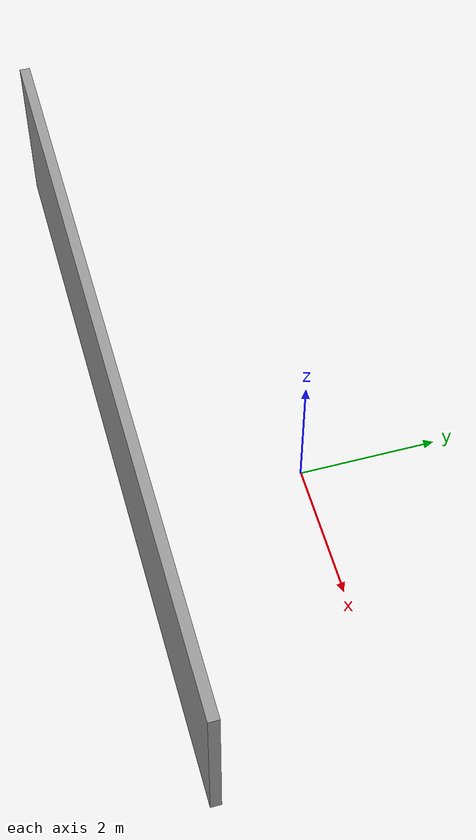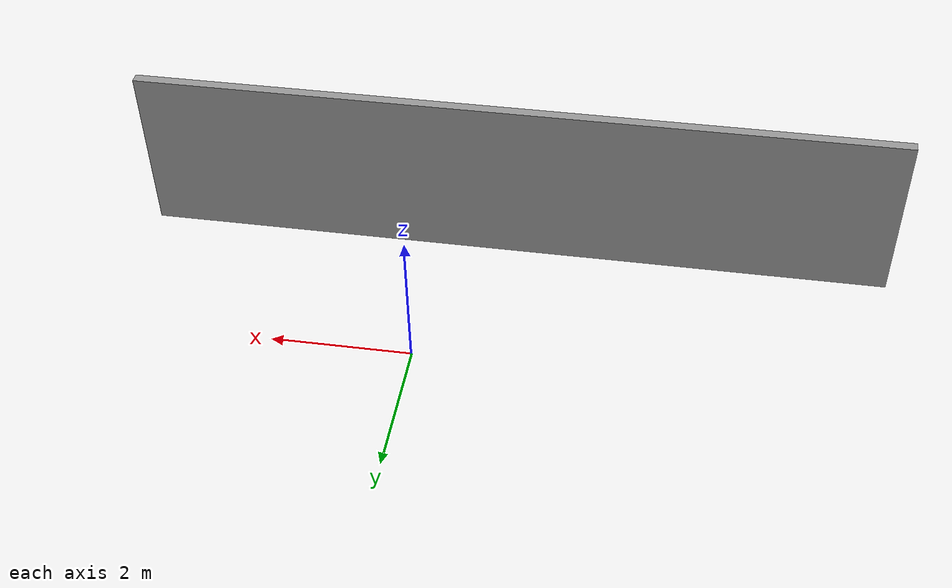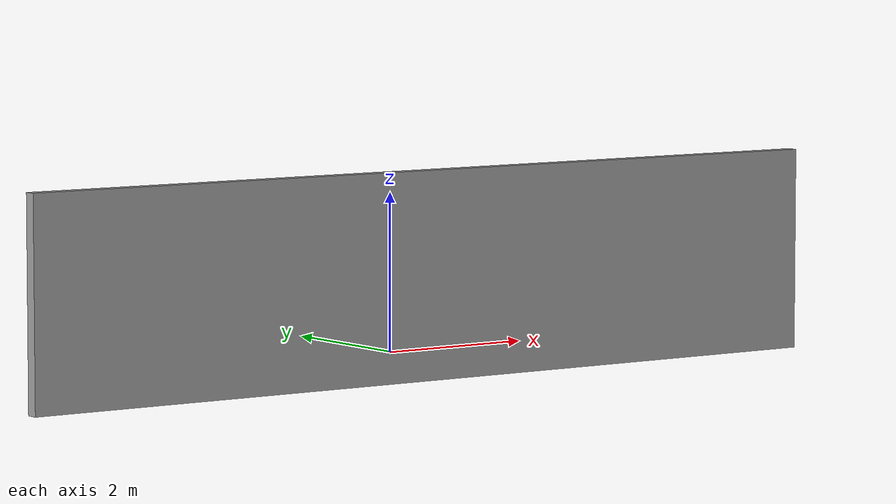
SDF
<?xml version='1.0'?>
<sdf version='1.6'>
  <model name='wall'>
    <pose frame=''>-1.0585 -2.453 0 0 -0 0</pose>
    <link name='Wall_2'>
      <collision name='Wall_2_Collision'>
        <geometry>
          <box>
            <size>11 0.15 2.5</size>
          </box>
        </geometry>
        <pose frame=''>0 0 1.25 0 -0 0</pose>
      </collision>
      <visual name='Wall_2_Visual'>
        <pose frame=''>0 0 1.25 0 -0 0</pose>
        <geometry>
          <box>
            <size>11 0.15 2.5</size>
          </box>
        </geometry>
        <material>
          <script>
            <uri>file://media/materials/scripts/gazebo.material</uri>
            <name>Gazebo/Grey</name>
          </script>
          <ambient>1 1 1 1</ambient>
        </material>
      </visual>
      <pose frame=''>0 0 0 0 -0 3.14159</pose>
    </link>
    <static>1</static>
  </model>
</sdf>
